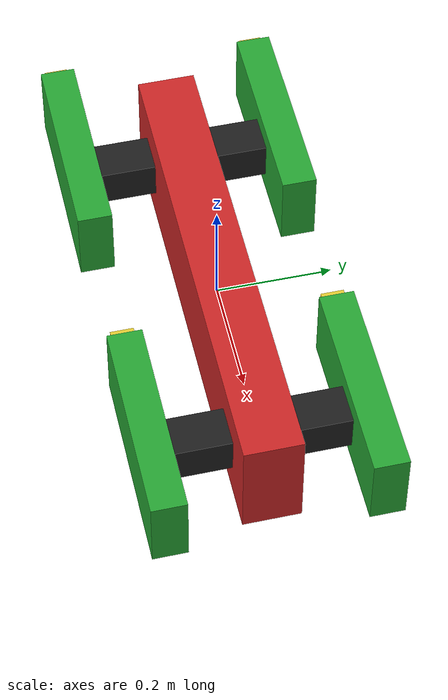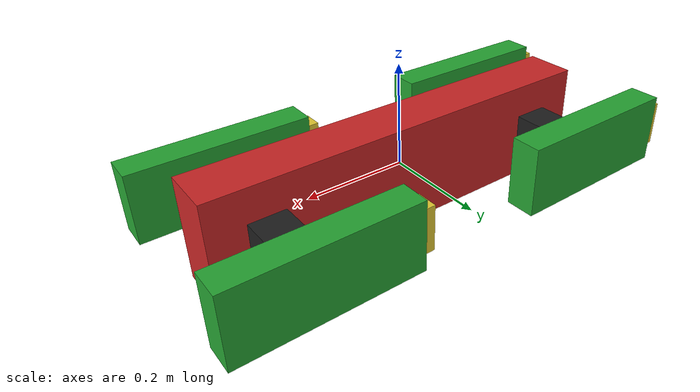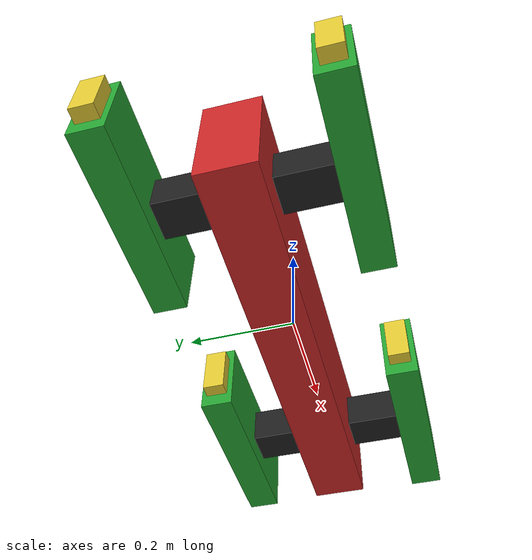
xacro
<?xml version="1.0"?>

<robot xmlns:xacro="http://www.ros.org/wiki/xacro" name="myrobot">

<!--######################- -     XACRO  PROPERTIES    - -######################-->

<xacro:property name="axle_dimensions" value="0.07 0.3 0.07"/>
<xacro:property name="thruster_dimensions" value="0.35 0.06 0.14"/>
<xacro:property name="exhaust_dimensions" value="0.05 0.04 0.09"/>
<xacro:property name="axis_orientation" value="0 1 0"/>
<xacro:property name="base_dimensions" value="0.81 0.1 0.2"/>

<!--######################- -      BASE DEFINITION     - -######################-->

    <link name="base_link">
        <visual>
            <geometry>
                <box size="0.81 0.1 0.2"/>
            </geometry>
        </visual>
        <collision>
            <geometry>
                <box size="0.81 0.1 0.2"/>
            </geometry>
        </collision>
        <inertial>
            <mass value="10"/>
            <inertia ixx="0.4" ixy="0.0" ixz="0.0" iyy="0.4" iyz="0.0" izz="0.2"/>
        </inertial>
    </link>
    <gazebo reference="base_link">
        <material>Gazebo/Red</material>
    </gazebo>

<!--######################- -      AXLE DEFINITION     - -######################-->

    <xacro:macro name="axle" params="prefix reflect">
        <link name="${prefix}_axle">
            <visual>
                <geometry>
                    <box size="${axle_dimensions}"/>
                </geometry>
            </visual>
            <collision>
                <geometry>
                    <box size="${axle_dimensions}"/>
                </geometry>
            </collision>
            <inertial>
                <mass value="3"/>
                <inertia ixx="0.4" ixy="0.0" ixz="0.0" iyy="0.4" iyz="0.0" izz="0.2"/>
            </inertial>
        </link>
        <joint name="base_to_${prefix}_axle" type="fixed">
            <parent link="base_link"/>
            <child link="${prefix}_axle"/>
            <origin xyz="${reflect*0.3} 0 0"/>
        </joint>
        <gazebo reference="${prefix}_axle">
            <material>Gazebo/Black</material>
        </gazebo>
    </xacro:macro>

    <xacro:axle prefix="front" reflect="1"/>
    <xacro:axle prefix="back" reflect="-1"/>

<!--######################- -   THURSTER  DEFINITION   - -######################-->

    <xacro:macro name="thruster" params="prefix suffix reflect">
        <link name="${prefix}_${suffix}_thruster">
            <visual>
                <geometry>
                    <box size="${thruster_dimensions}"/>
                </geometry>
                <origin xyz="-0.02 ${reflect*0.03} 0"/>
            </visual>
            <collision>
                <geometry>
                    <box size="${thruster_dimensions}"/>
                </geometry>
            </collision>
            <inertial>
                <mass value="2"/>
                <inertia ixx="0.4" ixy="0.0" ixz="0.0" iyy="0.4" iyz="0.0" izz="0.2"/>
            </inertial>
        </link>
        <joint name="base_to_${prefix}_${suffix}_thruster" type="continuous">
            <parent link="${prefix}_axle"/>
            <child link="${prefix}_${suffix}_thruster"/>
            <axis xyz="${axis_orientation}"/>
            <origin xyz="0 ${reflect*0.15} 0"/>
        </joint>
        <gazebo reference="${prefix}_${suffix}_thruster">
            <material>Gazebo/Green</material>
        </gazebo>
        <transmission name="${prefix}_${suffix}_thruster_transmission">
            <type>transmission_interface/SimpleTransmission</type>
            <actuator name="${prefix}_${suffix}_thruster_motor">
                <mechanicalReduction>1</mechanicalReduction>
            </actuator>
            <joint name="base_to_${prefix}_${suffix}_thruster">
                <hardwareInterface>hardware_interface/PositionJointInterface</hardwareInterface>
            </joint>
        </transmission>
    </xacro:macro>

    <xacro:thruster prefix="front" suffix="left"  reflect="1"  />
    <xacro:thruster prefix="front" suffix="right" reflect="-1" />
    <xacro:thruster prefix="back"  suffix="left"  reflect="1"  />
    <xacro:thruster prefix="back"  suffix="right" reflect="-1" />

<!--####################- -      EXHAUST  DEFINITION     - -####################-->

    <xacro:macro name="exhaust" params="prefix suffix reflect">
        <link name="${prefix}_${suffix}_exhaust">
            <visual>
                <geometry>
                    <box size="${exhaust_dimensions}"/>
                </geometry>
            </visual>
            <collision>
                <geometry>
                    <box size="${exhaust_dimensions}"/>
                </geometry>
            </collision>
            <inertial>
                <mass value="1"/>
                <inertia ixx="0.4" ixy="0.0" ixz="0.0" iyy="0.4" iyz="0.0" izz="0.2"/>
            </inertial>
        </link>
        <joint name="base_to_${prefix}_${suffix}_exhaust" type="fixed">
            <parent link="${prefix}_${suffix}_thruster"/>
            <child link="${prefix}_${suffix}_exhaust"/>
            <origin xyz="-0.195 ${reflect*0.03} 0"/>
        </joint>
        <gazebo reference="${prefix}_${suffix}_exhaust">
            <material>Gazebo/ZincYellow</material>
        </gazebo>
    </xacro:macro>

    <xacro:exhaust prefix="front" suffix="left"  reflect="1"  />
    <xacro:exhaust prefix="front" suffix="right" reflect="-1" />
    <xacro:exhaust prefix="back"  suffix="left"  reflect="1"  />
    <xacro:exhaust prefix="back"  suffix="right" reflect="-1" />

<!--####################- -         TRANSMISSIONS        - -####################-->

    <gazebo>
        <plugin name="gazebo_ros_control" filename="libgazebo_ros_control.so">
          <robotNamespace>/</robotNamespace>
        </plugin>
    </gazebo>

</robot>
